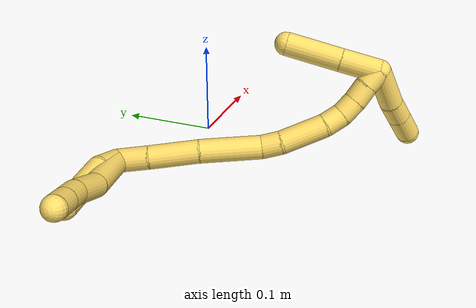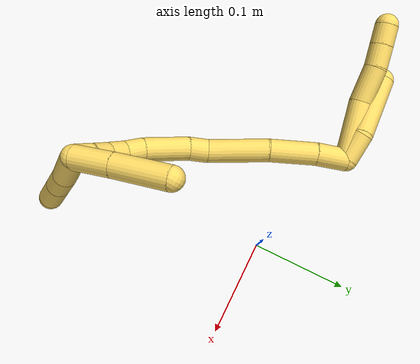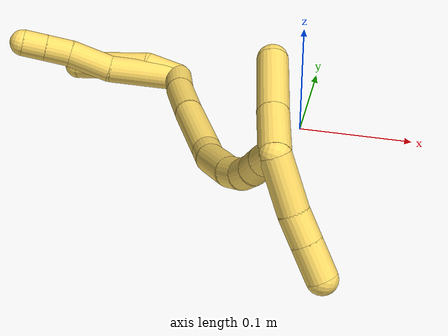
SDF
<sdf version="1.7">
 <world name="default">
  <model name="5">
   <static>0</static>
   <link name="5">
    <collision name="collision-cylinder-e_1_2_8">
     <pose>0.002026 -0.008463 0.031166 0.265152 0.062652 0.008358</pose>
     <geometry><cylinder><radius>0.0125</radius><length>0.064716</length></cylinder></geometry>
     <surface>
      <friction><ode><mu>1.16</mu><mu2>1.16</mu2><slip1>0</slip1><slip2>0</slip2></ode></friction>
      <contact><ode><kp>1e+06</kp><kd>1</kd><max_vel>0</max_vel><min_depth>0.001</min_depth></ode></contact>
     </surface>
    </collision>
    <visual name="visual-cylinder-e_1_2_8">
     <pose>0.002026 -0.008463 0.031166 0.265152 0.062652 0.008358</pose>
     <geometry><cylinder><radius>0.0125</radius><length>0.064716</length></cylinder></geometry>
     <material><ambient>1 0.858824 0.4 1</ambient></material>
    </visual>
    <collision name="collision-cylinder-e_2_8_9">
     <pose>0.008073 -0.01797 0.081605 0.054101 0.205378 0.005577</pose>
     <geometry><cylinder><radius>0.0125</radius><length>0.039432</length></cylinder></geometry>
     <surface>
      <friction><ode><mu>1.16</mu><mu2>1.16</mu2><slip1>0</slip1><slip2>0</slip2></ode></friction>
      <contact><ode><kp>1e+06</kp><kd>1</kd><max_vel>0</max_vel><min_depth>0.001</min_depth></ode></contact>
     </surface>
    </collision>
    <visual name="visual-cylinder-e_2_8_9">
     <pose>0.008073 -0.01797 0.081605 0.054101 0.205378 0.005577</pose>
     <geometry><cylinder><radius>0.0125</radius><length>0.039432</length></cylinder></geometry>
     <material><ambient>1 0.858824 0.4 1</ambient></material>
    </visual>
    <collision name="collision-cylinder-e_3_9_10">
     <pose>0.014274 -0.021614 0.1124 0.222027 0.182544 0.020404</pose>
     <geometry><cylinder><radius>0.0125</radius><length>0.024023</length></cylinder></geometry>
     <surface>
      <friction><ode><mu>1.16</mu><mu2>1.16</mu2><slip1>0</slip1><slip2>0</slip2></ode></friction>
      <contact><ode><kp>1e+06</kp><kd>1</kd><max_vel>0</max_vel><min_depth>0.001</min_depth></ode></contact>
     </surface>
    </collision>
    <visual name="visual-cylinder-e_3_9_10">
     <pose>0.014274 -0.021614 0.1124 0.222027 0.182544 0.020404</pose>
     <geometry><cylinder><radius>0.0125</radius><length>0.024023</length></cylinder></geometry>
     <material><ambient>1 0.858824 0.4 1</ambient></material>
    </visual>
    <collision name="collision-cylinder-e_4_10_6">
     <pose>0.018389 -0.026608 0.134394 0.224652 0.178159 0.020149</pose>
     <geometry><cylinder><radius>0.0125</radius><length>0.021829</length></cylinder></geometry>
     <surface>
      <friction><ode><mu>1.16</mu><mu2>1.16</mu2><slip1>0</slip1><slip2>0</slip2></ode></friction>
      <contact><ode><kp>1e+06</kp><kd>1</kd><max_vel>0</max_vel><min_depth>0.001</min_depth></ode></contact>
     </surface>
    </collision>
    <visual name="visual-cylinder-e_4_10_6">
     <pose>0.018389 -0.026608 0.134394 0.224652 0.178159 0.020149</pose>
     <geometry><cylinder><radius>0.0125</radius><length>0.021829</length></cylinder></geometry>
     <material><ambient>1 0.858824 0.4 1</ambient></material>
    </visual>
    <collision name="collision-cylinder-e_1_2_11">
     <pose>0.000619 0.00058 0.015841 -0.036609 0.039014 -0.000714</pose>
     <geometry><cylinder><radius>0.0125</radius><length>0.031727</length></cylinder></geometry>
     <surface>
      <friction><ode><mu>1.16</mu><mu2>1.16</mu2><slip1>0</slip1><slip2>0</slip2></ode></friction>
      <contact><ode><kp>1e+06</kp><kd>1</kd><max_vel>0</max_vel><min_depth>0.001</min_depth></ode></contact>
     </surface>
    </collision>
    <visual name="visual-cylinder-e_1_2_11">
     <pose>0.000619 0.00058 0.015841 -0.036609 0.039014 -0.000714</pose>
     <geometry><cylinder><radius>0.0125</radius><length>0.031727</length></cylinder></geometry>
     <material><ambient>1 0.858824 0.4 1</ambient></material>
    </visual>
    <collision name="collision-cylinder-e_2_11_5">
     <pose>-0.004946 -0.006047 0.064471 0.216369 -0.182136 -0.019836</pose>
     <geometry><cylinder><radius>0.0125</radius><length>0.068273</length></cylinder></geometry>
     <surface>
      <friction><ode><mu>1.16</mu><mu2>1.16</mu2><slip1>0</slip1><slip2>0</slip2></ode></friction>
      <contact><ode><kp>1e+06</kp><kd>1</kd><max_vel>0</max_vel><min_depth>0.001</min_depth></ode></contact>
     </surface>
    </collision>
    <visual name="visual-cylinder-e_2_11_5">
     <pose>-0.004946 -0.006047 0.064471 0.216369 -0.182136 -0.019836</pose>
     <geometry><cylinder><radius>0.0125</radius><length>0.068273</length></cylinder></geometry>
     <material><ambient>1 0.858824 0.4 1</ambient></material>
    </visual>
    <collision name="collision-cylinder-e_1_2_12">
     <pose>0.009395 -0.013164 -0.005634 1.97518 0.580654 0.85043</pose>
     <geometry><cylinder><radius>0.0125</radius><length>0.034252</length></cylinder></geometry>
     <surface>
      <friction><ode><mu>1.16</mu><mu2>1.16</mu2><slip1>0</slip1><slip2>0</slip2></ode></friction>
      <contact><ode><kp>1e+06</kp><kd>1</kd><max_vel>0</max_vel><min_depth>0.001</min_depth></ode></contact>
     </surface>
    </collision>
    <visual name="visual-cylinder-e_1_2_12">
     <pose>0.009395 -0.013164 -0.005634 1.97518 0.580654 0.85043</pose>
     <geometry><cylinder><radius>0.0125</radius><length>0.034252</length></cylinder></geometry>
     <material><ambient>1 0.858824 0.4 1</ambient></material>
    </visual>
    <collision name="collision-cylinder-e_2_12_13">
     <pose>0.032126 -0.045307 -0.022319 2.0981 0.545731 0.906046</pose>
     <geometry><cylinder><radius>0.0125</radius><length>0.051388</length></cylinder></geometry>
     <surface>
      <friction><ode><mu>1.16</mu><mu2>1.16</mu2><slip1>0</slip1><slip2>0</slip2></ode></friction>
      <contact><ode><kp>1e+06</kp><kd>1</kd><max_vel>0</max_vel><min_depth>0.001</min_depth></ode></contact>
     </surface>
    </collision>
    <visual name="visual-cylinder-e_2_12_13">
     <pose>0.032126 -0.045307 -0.022319 2.0981 0.545731 0.906046</pose>
     <geometry><cylinder><radius>0.0125</radius><length>0.051388</length></cylinder></geometry>
     <material><ambient>1 0.858824 0.4 1</ambient></material>
    </visual>
    <collision name="collision-cylinder-e_3_13_14">
     <pose>0.05943 -0.088448 -0.049834 2.16892 0.445662 0.80982</pose>
     <geometry><cylinder><radius>0.0125</radius><length>0.064806</length></cylinder></geometry>
     <surface>
      <friction><ode><mu>1.16</mu><mu2>1.16</mu2><slip1>0</slip1><slip2>0</slip2></ode></friction>
      <contact><ode><kp>1e+06</kp><kd>1</kd><max_vel>0</max_vel><min_depth>0.001</min_depth></ode></contact>
     </surface>
    </collision>
    <visual name="visual-cylinder-e_3_13_14">
     <pose>0.05943 -0.088448 -0.049834 2.16892 0.445662 0.80982</pose>
     <geometry><cylinder><radius>0.0125</radius><length>0.064806</length></cylinder></geometry>
     <material><ambient>1 0.858824 0.4 1</ambient></material>
    </visual>
    <collision name="collision-cylinder-e_4_14_15">
     <pose>0.079951 -0.119786 -0.070236 2.07272 0.675202 1.07064</pose>
     <geometry><cylinder><radius>0.0125</radius><length>0.020972</length></cylinder></geometry>
     <surface>
      <friction><ode><mu>1.16</mu><mu2>1.16</mu2><slip1>0</slip1><slip2>0</slip2></ode></friction>
      <contact><ode><kp>1e+06</kp><kd>1</kd><max_vel>0</max_vel><min_depth>0.001</min_depth></ode></contact>
     </surface>
    </collision>
    <visual name="visual-cylinder-e_4_14_15">
     <pose>0.079951 -0.119786 -0.070236 2.07272 0.675202 1.07064</pose>
     <geometry><cylinder><radius>0.0125</radius><length>0.020972</length></cylinder></geometry>
     <material><ambient>1 0.858824 0.4 1</ambient></material>
    </visual>
    <collision name="collision-cylinder-e_5_15_16">
     <pose>0.10266 -0.140054 -0.086059 2.30786 0.740256 1.43904</pose>
     <geometry><cylinder><radius>0.0125</radius><length>0.047901</length></cylinder></geometry>
     <surface>
      <friction><ode><mu>1.16</mu><mu2>1.16</mu2><slip1>0</slip1><slip2>0</slip2></ode></friction>
      <contact><ode><kp>1e+06</kp><kd>1</kd><max_vel>0</max_vel><min_depth>0.001</min_depth></ode></contact>
     </surface>
    </collision>
    <visual name="visual-cylinder-e_5_15_16">
     <pose>0.10266 -0.140054 -0.086059 2.30786 0.740256 1.43904</pose>
     <geometry><cylinder><radius>0.0125</radius><length>0.047901</length></cylinder></geometry>
     <material><ambient>1 0.858824 0.4 1</ambient></material>
    </visual>
    <collision name="collision-cylinder-e_6_16_17">
     <pose>0.12626 -0.156958 -0.103989 2.57923 0.805912 1.95058</pose>
     <geometry><cylinder><radius>0.0125</radius><length>0.020641</length></cylinder></geometry>
     <surface>
      <friction><ode><mu>1.16</mu><mu2>1.16</mu2><slip1>0</slip1><slip2>0</slip2></ode></friction>
      <contact><ode><kp>1e+06</kp><kd>1</kd><max_vel>0</max_vel><min_depth>0.001</min_depth></ode></contact>
     </surface>
    </collision>
    <visual name="visual-cylinder-e_6_16_17">
     <pose>0.12626 -0.156958 -0.103989 2.57923 0.805912 1.95058</pose>
     <geometry><cylinder><radius>0.0125</radius><length>0.020641</length></cylinder></geometry>
     <material><ambient>1 0.858824 0.4 1</ambient></material>
    </visual>
    <collision name="collision-cylinder-e_7_17_18">
     <pose>0.14249 -0.162601 -0.11446 2.74887 1.07156 2.495</pose>
     <geometry><cylinder><radius>0.0125</radius><length>0.020011</length></cylinder></geometry>
     <surface>
      <friction><ode><mu>1.16</mu><mu2>1.16</mu2><slip1>0</slip1><slip2>0</slip2></ode></friction>
      <contact><ode><kp>1e+06</kp><kd>1</kd><max_vel>0</max_vel><min_depth>0.001</min_depth></ode></contact>
     </surface>
    </collision>
    <visual name="visual-cylinder-e_7_17_18">
     <pose>0.14249 -0.162601 -0.11446 2.74887 1.07156 2.495</pose>
     <geometry><cylinder><radius>0.0125</radius><length>0.020011</length></cylinder></geometry>
     <material><ambient>1 0.858824 0.4 1</ambient></material>
    </visual>
    <collision name="collision-cylinder-e_8_18_19">
     <pose>0.160607 -0.16498 -0.122456 2.98986 1.20157 2.92066</pose>
     <geometry><cylinder><radius>0.0125</radius><length>0.020013</length></cylinder></geometry>
     <surface>
      <friction><ode><mu>1.16</mu><mu2>1.16</mu2><slip1>0</slip1><slip2>0</slip2></ode></friction>
      <contact><ode><kp>1e+06</kp><kd>1</kd><max_vel>0</max_vel><min_depth>0.001</min_depth></ode></contact>
     </surface>
    </collision>
    <visual name="visual-cylinder-e_8_18_19">
     <pose>0.160607 -0.16498 -0.122456 2.98986 1.20157 2.92066</pose>
     <geometry><cylinder><radius>0.0125</radius><length>0.020013</length></cylinder></geometry>
     <material><ambient>1 0.858824 0.4 1</ambient></material>
    </visual>
    <collision name="collision-cylinder-e_9_19_1">
     <pose>0.178986 -0.166984 -0.130049 2.7939 1.12898 2.60051</pose>
     <geometry><cylinder><radius>0.0125</radius><length>0.020016</length></cylinder></geometry>
     <surface>
      <friction><ode><mu>1.16</mu><mu2>1.16</mu2><slip1>0</slip1><slip2>0</slip2></ode></friction>
      <contact><ode><kp>1e+06</kp><kd>1</kd><max_vel>0</max_vel><min_depth>0.001</min_depth></ode></contact>
     </surface>
    </collision>
    <visual name="visual-cylinder-e_9_19_1">
     <pose>0.178986 -0.166984 -0.130049 2.7939 1.12898 2.60051</pose>
     <geometry><cylinder><radius>0.0125</radius><length>0.020016</length></cylinder></geometry>
     <material><ambient>1 0.858824 0.4 1</ambient></material>
    </visual>
    <collision name="collision-cylinder-e_1_1_20">
     <pose>0.173041 -0.180366 -0.146282 2.36807 -0.720778 -1.49323</pose>
     <geometry><cylinder><radius>0.0125</radius><length>0.045432</length></cylinder></geometry>
     <surface>
      <friction><ode><mu>1.16</mu><mu2>1.16</mu2><slip1>0</slip1><slip2>0</slip2></ode></friction>
      <contact><ode><kp>1e+06</kp><kd>1</kd><max_vel>0</max_vel><min_depth>0.001</min_depth></ode></contact>
     </surface>
    </collision>
    <visual name="visual-cylinder-e_1_1_20">
     <pose>0.173041 -0.180366 -0.146282 2.36807 -0.720778 -1.49323</pose>
     <geometry><cylinder><radius>0.0125</radius><length>0.045432</length></cylinder></geometry>
     <material><ambient>1 0.858824 0.4 1</ambient></material>
    </visual>
    <collision name="collision-cylinder-e_2_20_21">
     <pose>0.150988 -0.198754 -0.166245 2.44658 -0.610416 -1.43176</pose>
     <geometry><cylinder><radius>0.0125</radius><length>0.024639</length></cylinder></geometry>
     <surface>
      <friction><ode><mu>1.16</mu><mu2>1.16</mu2><slip1>0</slip1><slip2>0</slip2></ode></friction>
      <contact><ode><kp>1e+06</kp><kd>1</kd><max_vel>0</max_vel><min_depth>0.001</min_depth></ode></contact>
     </surface>
    </collision>
    <visual name="visual-cylinder-e_2_20_21">
     <pose>0.150988 -0.198754 -0.166245 2.44658 -0.610416 -1.43176</pose>
     <geometry><cylinder><radius>0.0125</radius><length>0.024639</length></cylinder></geometry>
     <material><ambient>1 0.858824 0.4 1</ambient></material>
    </visual>
    <collision name="collision-cylinder-e_3_21_4">
     <pose>0.135343 -0.213066 -0.183416 2.44687 -0.610846 -1.43297</pose>
     <geometry><cylinder><radius>0.0125</radius><length>0.029929</length></cylinder></geometry>
     <surface>
      <friction><ode><mu>1.16</mu><mu2>1.16</mu2><slip1>0</slip1><slip2>0</slip2></ode></friction>
      <contact><ode><kp>1e+06</kp><kd>1</kd><max_vel>0</max_vel><min_depth>0.001</min_depth></ode></contact>
     </surface>
    </collision>
    <visual name="visual-cylinder-e_3_21_4">
     <pose>0.135343 -0.213066 -0.183416 2.44687 -0.610846 -1.43297</pose>
     <geometry><cylinder><radius>0.0125</radius><length>0.029929</length></cylinder></geometry>
     <material><ambient>1 0.858824 0.4 1</ambient></material>
    </visual>
    <collision name="collision-cylinder-e_1_1_22">
     <pose>0.184254 -0.149117 -0.127459 -1.24111 -0.182952 0.130944</pose>
     <geometry><cylinder><radius>0.0125</radius><length>0.041544</length></cylinder></geometry>
     <surface>
      <friction><ode><mu>1.16</mu><mu2>1.16</mu2><slip1>0</slip1><slip2>0</slip2></ode></friction>
      <contact><ode><kp>1e+06</kp><kd>1</kd><max_vel>0</max_vel><min_depth>0.001</min_depth></ode></contact>
     </surface>
    </collision>
    <visual name="visual-cylinder-e_1_1_22">
     <pose>0.184254 -0.149117 -0.127459 -1.24111 -0.182952 0.130944</pose>
     <geometry><cylinder><radius>0.0125</radius><length>0.041544</length></cylinder></geometry>
     <material><ambient>1 0.858824 0.4 1</ambient></material>
    </visual>
    <collision name="collision-cylinder-e_2_22_3">
     <pose>0.175212 -0.10236 -0.11224 -1.26678 -0.181034 0.133104</pose>
     <geometry><cylinder><radius>0.0125</radius><length>0.058456</length></cylinder></geometry>
     <surface>
      <friction><ode><mu>1.16</mu><mu2>1.16</mu2><slip1>0</slip1><slip2>0</slip2></ode></friction>
      <contact><ode><kp>1e+06</kp><kd>1</kd><max_vel>0</max_vel><min_depth>0.001</min_depth></ode></contact>
     </surface>
    </collision>
    <visual name="visual-cylinder-e_2_22_3">
     <pose>0.175212 -0.10236 -0.11224 -1.26678 -0.181034 0.133104</pose>
     <geometry><cylinder><radius>0.0125</radius><length>0.058456</length></cylinder></geometry>
     <material><ambient>1 0.858824 0.4 1</ambient></material>
    </visual>
    <collision name="collision-sphere-3">
     <pose>0.16995 -0.074928 -0.103633 0 -0 0</pose>
     <geometry><sphere><radius>0.0125</radius></sphere></geometry>
     <surface>
      <friction><ode><mu>1.16</mu><mu2>1.16</mu2><slip1>0</slip1><slip2>0</slip2></ode></friction>
      <contact><ode><kp>1e+06</kp><kd>1</kd><max_vel>0</max_vel><min_depth>0.001</min_depth></ode></contact>
     </surface>
    </collision>
    <visual name="visual-sphere-3">
     <pose>0.16995 -0.074928 -0.103633 0 -0 0</pose>
     <geometry><sphere><radius>0.0125</radius></sphere></geometry>
     <material><ambient>1 0.858824 0.4 1</ambient></material>
    </visual>
    <collision name="collision-sphere-22">
     <pose>0.180474 -0.129791 -0.120847 0 -0 0</pose>
     <geometry><sphere><radius>0.0125</radius></sphere></geometry>
     <surface>
      <friction><ode><mu>1.16</mu><mu2>1.16</mu2><slip1>0</slip1><slip2>0</slip2></ode></friction>
      <contact><ode><kp>1e+06</kp><kd>1</kd><max_vel>0</max_vel><min_depth>0.001</min_depth></ode></contact>
     </surface>
    </collision>
    <visual name="visual-sphere-22">
     <pose>0.180474 -0.129791 -0.120847 0 -0 0</pose>
     <geometry><sphere><radius>0.0125</radius></sphere></geometry>
     <material><ambient>1 0.858824 0.4 1</ambient></material>
    </visual>
    <collision name="collision-sphere-4">
     <pose>0.12676 -0.220914 -0.192833 0 -0 0</pose>
     <geometry><sphere><radius>0.0125</radius></sphere></geometry>
     <surface>
      <friction><ode><mu>1.16</mu><mu2>1.16</mu2><slip1>0</slip1><slip2>0</slip2></ode></friction>
      <contact><ode><kp>1e+06</kp><kd>1</kd><max_vel>0</max_vel><min_depth>0.001</min_depth></ode></contact>
     </surface>
    </collision>
    <visual name="visual-sphere-4">
     <pose>0.12676 -0.220914 -0.192833 0 -0 0</pose>
     <geometry><sphere><radius>0.0125</radius></sphere></geometry>
     <material><ambient>1 0.858824 0.4 1</ambient></material>
    </visual>
    <collision name="collision-sphere-21">
     <pose>0.143926 -0.205219 -0.173998 0 -0 0</pose>
     <geometry><sphere><radius>0.0125</radius></sphere></geometry>
     <surface>
      <friction><ode><mu>1.16</mu><mu2>1.16</mu2><slip1>0</slip1><slip2>0</slip2></ode></friction>
      <contact><ode><kp>1e+06</kp><kd>1</kd><max_vel>0</max_vel><min_depth>0.001</min_depth></ode></contact>
     </surface>
    </collision>
    <visual name="visual-sphere-21">
     <pose>0.143926 -0.205219 -0.173998 0 -0 0</pose>
     <geometry><sphere><radius>0.0125</radius></sphere></geometry>
     <material><ambient>1 0.858824 0.4 1</ambient></material>
    </visual>
    <collision name="collision-sphere-20">
     <pose>0.158049 -0.192289 -0.158492 0 -0 0</pose>
     <geometry><sphere><radius>0.0125</radius></sphere></geometry>
     <surface>
      <friction><ode><mu>1.16</mu><mu2>1.16</mu2><slip1>0</slip1><slip2>0</slip2></ode></friction>
      <contact><ode><kp>1e+06</kp><kd>1</kd><max_vel>0</max_vel><min_depth>0.001</min_depth></ode></contact>
     </surface>
    </collision>
    <visual name="visual-sphere-20">
     <pose>0.158049 -0.192289 -0.158492 0 -0 0</pose>
     <geometry><sphere><radius>0.0125</radius></sphere></geometry>
     <material><ambient>1 0.858824 0.4 1</ambient></material>
    </visual>
    <collision name="collision-sphere-11">
     <pose>0.001237 0.00116 0.031681 0 -0 0</pose>
     <geometry><sphere><radius>0.0125</radius></sphere></geometry>
     <surface>
      <friction><ode><mu>1.16</mu><mu2>1.16</mu2><slip1>0</slip1><slip2>0</slip2></ode></friction>
      <contact><ode><kp>1e+06</kp><kd>1</kd><max_vel>0</max_vel><min_depth>0.001</min_depth></ode></contact>
     </surface>
    </collision>
    <visual name="visual-sphere-11">
     <pose>0.001237 0.00116 0.031681 0 -0 0</pose>
     <geometry><sphere><radius>0.0125</radius></sphere></geometry>
     <material><ambient>1 0.858824 0.4 1</ambient></material>
    </visual>
    <collision name="collision-sphere-6">
     <pose>0.020323 -0.029001 0.144866 0 -0 0</pose>
     <geometry><sphere><radius>0.0125</radius></sphere></geometry>
     <surface>
      <friction><ode><mu>1.16</mu><mu2>1.16</mu2><slip1>0</slip1><slip2>0</slip2></ode></friction>
      <contact><ode><kp>1e+06</kp><kd>1</kd><max_vel>0</max_vel><min_depth>0.001</min_depth></ode></contact>
     </surface>
    </collision>
    <visual name="visual-sphere-6">
     <pose>0.020323 -0.029001 0.144866 0 -0 0</pose>
     <geometry><sphere><radius>0.0125</radius></sphere></geometry>
     <material><ambient>1 0.858824 0.4 1</ambient></material>
    </visual>
    <collision name="collision-sphere-10">
     <pose>0.016455 -0.024215 0.123922 0 -0 0</pose>
     <geometry><sphere><radius>0.0125</radius></sphere></geometry>
     <surface>
      <friction><ode><mu>1.16</mu><mu2>1.16</mu2><slip1>0</slip1><slip2>0</slip2></ode></friction>
      <contact><ode><kp>1e+06</kp><kd>1</kd><max_vel>0</max_vel><min_depth>0.001</min_depth></ode></contact>
     </surface>
    </collision>
    <visual name="visual-sphere-10">
     <pose>0.016455 -0.024215 0.123922 0 -0 0</pose>
     <geometry><sphere><radius>0.0125</radius></sphere></geometry>
     <material><ambient>1 0.858824 0.4 1</ambient></material>
    </visual>
    <collision name="collision-sphere-9">
     <pose>0.012094 -0.019013 0.100878 0 -0 0</pose>
     <geometry><sphere><radius>0.0125</radius></sphere></geometry>
     <surface>
      <friction><ode><mu>1.16</mu><mu2>1.16</mu2><slip1>0</slip1><slip2>0</slip2></ode></friction>
      <contact><ode><kp>1e+06</kp><kd>1</kd><max_vel>0</max_vel><min_depth>0.001</min_depth></ode></contact>
     </surface>
    </collision>
    <visual name="visual-sphere-9">
     <pose>0.012094 -0.019013 0.100878 0 -0 0</pose>
     <geometry><sphere><radius>0.0125</radius></sphere></geometry>
     <material><ambient>1 0.858824 0.4 1</ambient></material>
    </visual>
    <collision name="collision-sphere-2">
     <geometry><sphere><radius>0.0125</radius></sphere></geometry>
     <surface>
      <friction><ode><mu>1.16</mu><mu2>1.16</mu2><slip1>0</slip1><slip2>0</slip2></ode></friction>
      <contact><ode><kp>1e+06</kp><kd>1</kd><max_vel>0</max_vel><min_depth>0.001</min_depth></ode></contact>
     </surface>
    </collision>
    <visual name="visual-sphere-2">
     <geometry><sphere><radius>0.0125</radius></sphere></geometry>
     <material><ambient>1 0.858824 0.4 1</ambient></material>
    </visual>
    <collision name="collision-sphere-19">
     <pose>0.169939 -0.165526 -0.126026 0 -0 0</pose>
     <geometry><sphere><radius>0.0125</radius></sphere></geometry>
     <surface>
      <friction><ode><mu>1.16</mu><mu2>1.16</mu2><slip1>0</slip1><slip2>0</slip2></ode></friction>
      <contact><ode><kp>1e+06</kp><kd>1</kd><max_vel>0</max_vel><min_depth>0.001</min_depth></ode></contact>
     </surface>
    </collision>
    <visual name="visual-sphere-19">
     <pose>0.169939 -0.165526 -0.126026 0 -0 0</pose>
     <geometry><sphere><radius>0.0125</radius></sphere></geometry>
     <material><ambient>1 0.858824 0.4 1</ambient></material>
    </visual>
    <collision name="collision-sphere-8">
     <pose>0.004052 -0.016926 0.062331 0 -0 0</pose>
     <geometry><sphere><radius>0.0125</radius></sphere></geometry>
     <surface>
      <friction><ode><mu>1.16</mu><mu2>1.16</mu2><slip1>0</slip1><slip2>0</slip2></ode></friction>
      <contact><ode><kp>1e+06</kp><kd>1</kd><max_vel>0</max_vel><min_depth>0.001</min_depth></ode></contact>
     </surface>
    </collision>
    <visual name="visual-sphere-8">
     <pose>0.004052 -0.016926 0.062331 0 -0 0</pose>
     <geometry><sphere><radius>0.0125</radius></sphere></geometry>
     <material><ambient>1 0.858824 0.4 1</ambient></material>
    </visual>
    <collision name="collision-sphere-5">
     <pose>-0.011129 -0.013254 0.09726 0 -0 0</pose>
     <geometry><sphere><radius>0.0125</radius></sphere></geometry>
     <surface>
      <friction><ode><mu>1.16</mu><mu2>1.16</mu2><slip1>0</slip1><slip2>0</slip2></ode></friction>
      <contact><ode><kp>1e+06</kp><kd>1</kd><max_vel>0</max_vel><min_depth>0.001</min_depth></ode></contact>
     </surface>
    </collision>
    <visual name="visual-sphere-5">
     <pose>-0.011129 -0.013254 0.09726 0 -0 0</pose>
     <geometry><sphere><radius>0.0125</radius></sphere></geometry>
     <material><ambient>1 0.858824 0.4 1</ambient></material>
    </visual>
    <collision name="collision-sphere-12">
     <pose>0.01879 -0.026329 -0.011268 0 -0 0</pose>
     <geometry><sphere><radius>0.0125</radius></sphere></geometry>
     <surface>
      <friction><ode><mu>1.16</mu><mu2>1.16</mu2><slip1>0</slip1><slip2>0</slip2></ode></friction>
      <contact><ode><kp>1e+06</kp><kd>1</kd><max_vel>0</max_vel><min_depth>0.001</min_depth></ode></contact>
     </surface>
    </collision>
    <visual name="visual-sphere-12">
     <pose>0.01879 -0.026329 -0.011268 0 -0 0</pose>
     <geometry><sphere><radius>0.0125</radius></sphere></geometry>
     <material><ambient>1 0.858824 0.4 1</ambient></material>
    </visual>
    <collision name="collision-sphere-13">
     <pose>0.045462 -0.064286 -0.03337 0 -0 0</pose>
     <geometry><sphere><radius>0.0125</radius></sphere></geometry>
     <surface>
      <friction><ode><mu>1.16</mu><mu2>1.16</mu2><slip1>0</slip1><slip2>0</slip2></ode></friction>
      <contact><ode><kp>1e+06</kp><kd>1</kd><max_vel>0</max_vel><min_depth>0.001</min_depth></ode></contact>
     </surface>
    </collision>
    <visual name="visual-sphere-13">
     <pose>0.045462 -0.064286 -0.03337 0 -0 0</pose>
     <geometry><sphere><radius>0.0125</radius></sphere></geometry>
     <material><ambient>1 0.858824 0.4 1</ambient></material>
    </visual>
    <collision name="collision-sphere-14">
     <pose>0.073397 -0.11261 -0.066298 0 -0 0</pose>
     <geometry><sphere><radius>0.0125</radius></sphere></geometry>
     <surface>
      <friction><ode><mu>1.16</mu><mu2>1.16</mu2><slip1>0</slip1><slip2>0</slip2></ode></friction>
      <contact><ode><kp>1e+06</kp><kd>1</kd><max_vel>0</max_vel><min_depth>0.001</min_depth></ode></contact>
     </surface>
    </collision>
    <visual name="visual-sphere-14">
     <pose>0.073397 -0.11261 -0.066298 0 -0 0</pose>
     <geometry><sphere><radius>0.0125</radius></sphere></geometry>
     <material><ambient>1 0.858824 0.4 1</ambient></material>
    </visual>
    <collision name="collision-sphere-15">
     <pose>0.086506 -0.126961 -0.074174 0 -0 0</pose>
     <geometry><sphere><radius>0.0125</radius></sphere></geometry>
     <surface>
      <friction><ode><mu>1.16</mu><mu2>1.16</mu2><slip1>0</slip1><slip2>0</slip2></ode></friction>
      <contact><ode><kp>1e+06</kp><kd>1</kd><max_vel>0</max_vel><min_depth>0.001</min_depth></ode></contact>
     </surface>
    </collision>
    <visual name="visual-sphere-15">
     <pose>0.086506 -0.126961 -0.074174 0 -0 0</pose>
     <geometry><sphere><radius>0.0125</radius></sphere></geometry>
     <material><ambient>1 0.858824 0.4 1</ambient></material>
    </visual>
    <collision name="collision-sphere-16">
     <pose>0.118814 -0.153147 -0.097943 0 -0 0</pose>
     <geometry><sphere><radius>0.0125</radius></sphere></geometry>
     <surface>
      <friction><ode><mu>1.16</mu><mu2>1.16</mu2><slip1>0</slip1><slip2>0</slip2></ode></friction>
      <contact><ode><kp>1e+06</kp><kd>1</kd><max_vel>0</max_vel><min_depth>0.001</min_depth></ode></contact>
     </surface>
    </collision>
    <visual name="visual-sphere-16">
     <pose>0.118814 -0.153147 -0.097943 0 -0 0</pose>
     <geometry><sphere><radius>0.0125</radius></sphere></geometry>
     <material><ambient>1 0.858824 0.4 1</ambient></material>
    </visual>
    <collision name="collision-sphere-17">
     <pose>0.133706 -0.160768 -0.110035 0 -0 0</pose>
     <geometry><sphere><radius>0.0125</radius></sphere></geometry>
     <surface>
      <friction><ode><mu>1.16</mu><mu2>1.16</mu2><slip1>0</slip1><slip2>0</slip2></ode></friction>
      <contact><ode><kp>1e+06</kp><kd>1</kd><max_vel>0</max_vel><min_depth>0.001</min_depth></ode></contact>
     </surface>
    </collision>
    <visual name="visual-sphere-17">
     <pose>0.133706 -0.160768 -0.110035 0 -0 0</pose>
     <geometry><sphere><radius>0.0125</radius></sphere></geometry>
     <material><ambient>1 0.858824 0.4 1</ambient></material>
    </visual>
    <collision name="collision-sphere-18">
     <pose>0.151274 -0.164435 -0.118886 0 -0 0</pose>
     <geometry><sphere><radius>0.0125</radius></sphere></geometry>
     <surface>
      <friction><ode><mu>1.16</mu><mu2>1.16</mu2><slip1>0</slip1><slip2>0</slip2></ode></friction>
      <contact><ode><kp>1e+06</kp><kd>1</kd><max_vel>0</max_vel><min_depth>0.001</min_depth></ode></contact>
     </surface>
    </collision>
    <visual name="visual-sphere-18">
     <pose>0.151274 -0.164435 -0.118886 0 -0 0</pose>
     <geometry><sphere><radius>0.0125</radius></sphere></geometry>
     <material><ambient>1 0.858824 0.4 1</ambient></material>
    </visual>
    <collision name="collision-sphere-1">
     <pose>0.188033 -0.168442 -0.134072 0 -0 0</pose>
     <geometry><sphere><radius>0.0125</radius></sphere></geometry>
     <surface>
      <friction><ode><mu>1.16</mu><mu2>1.16</mu2><slip1>0</slip1><slip2>0</slip2></ode></friction>
      <contact><ode><kp>1e+06</kp><kd>1</kd><max_vel>0</max_vel><min_depth>0.001</min_depth></ode></contact>
     </surface>
    </collision>
    <visual name="visual-sphere-1">
     <pose>0.188033 -0.168442 -0.134072 0 -0 0</pose>
     <geometry><sphere><radius>0.0125</radius></sphere></geometry>
     <material><ambient>1 0.858824 0.4 1</ambient></material>
    </visual>
    <inertial>
     <pose>0.07877 -0.087023 -0.042627 0 -0 0</pose>
     <mass>0.75</mass>
     <inertia><ixx>0.00016</ixx><ixy>0</ixy><ixz>0</ixz><iyy>0.000107</iyy><iyz>0</iyz><izz>2.6e-05</izz></inertia>
    </inertial>
   </link>
   <pose>-0.124522 0.046714 0.012396 1.14324 -1.14205 -1.25168</pose>
  </model>
 </world>
</sdf>
